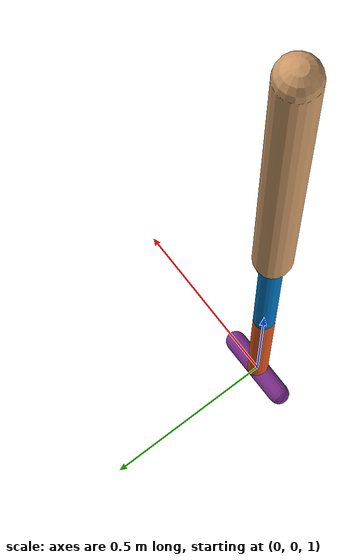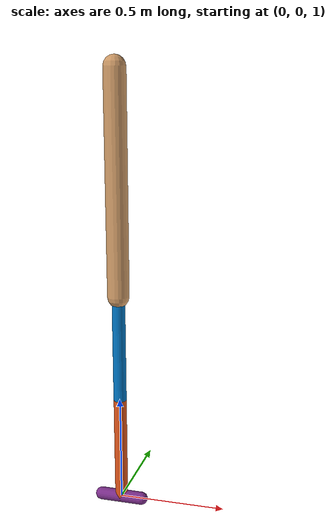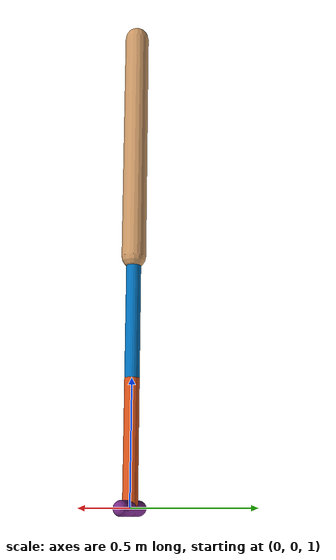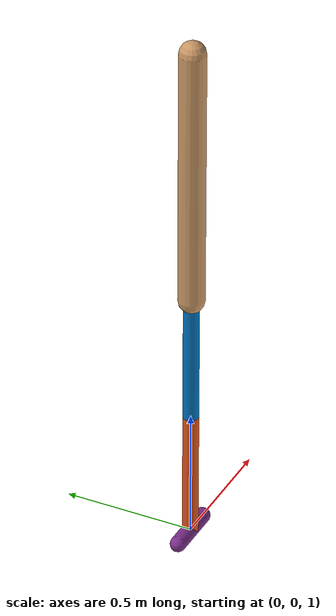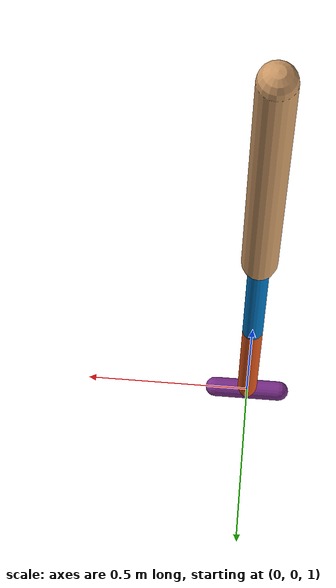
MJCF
<mujoco model="sustech_biped2d">
    <compiler angle="degree" coordinate="local" inertiafromgeom="auto"/>
    <default>
        <joint armature="0" damping="0.0" limited="true" solimplimit="0 .8 .03" solreflimit=".02 1" stiffness="0"/>
        <geom conaffinity="0" condim="3" contype="1" friction=".9 .1 .1" rgba="0.8 0.6 .4 1" solimp="0.0 0.8 0.01"
              solref="0.02 1"/>
    </default>
    <size nstack="300000" nuser_geom="1"/>
    <option gravity="0 0 -9.81" timestep="0.002"/>
    <worldbody>
        <body name="torso" pos="0 0 2.0">
            <inertial pos="0 0 0.2" mass="0" diaginertia="0.1675 0.1675 0.015"/>
            <geom fromto="0 0 0 0 0 1.0" name="torso" size="0.05" type="capsule"/>
            <body name="lthigh" pos="0 0 0">
                <joint axis="0 -1 0" damping="0.0" name="lthigh" pos="0 0 0" range="-45 135" stiffness="0"
                       type="hinge"/>
                <inertial pos="0 0 -0.25" mass="10"/>
                <geom axisangle="0 -1 0 0" name="lthigh" pos="0 0 -0.25" rgba="0 0.4470 0.7410 1"
                      size="0.03 0.25" type="capsule"/>
                <body name="lshin" pos="0 0 -0.5">
                    <joint axis="0 -1 0" damping="0.0" name="lshin" pos="0 0 0" range="-135 0" stiffness="0"
                           type="hinge"/>
                    <inertial pos="0 0 -0.25" mass="10"/>
                    <geom axisangle="0 -1 0 0" name="lshin" pos="0 0 -0.25" rgba="0.8500 0.3250 0.0980 1"
                          size="0.03 0.25" type="capsule"/>
                    <body name="lfoot" pos="0 0 -0.5">
                        <joint axis="0 -1 0" damping="0.0" name="lfoot" pos="0 0 0" range="-50 50" stiffness="0"
                               type="hinge"/>
                        <inertial pos="0 0 0" axisangle="0 -1 0 90" mass="5"/>
                        <geom axisangle="0 -1 0 90" name="lfoot" pos="0 0 0" rgba="0.4940  0.1840 0.5560 1"
                              size="0.03 0.1" type="capsule"/>
                    </body>
                </body>
            </body>
            <body name="rthigh" pos="0 0 0">
                <joint axis="0 -1 0" damping="0.0" name="rthigh" pos="0 0 0" range="-45 135" stiffness="0"
                       type="hinge"/>
                <inertial pos="0 0 -0.25" mass="10"/>
                <geom axisangle="0 -1 0 0" name="rthigh" pos="0 0 -0.25" rgba="0.8500 0.3250 0.0980 1"
                      size="0.03 0.25" type="capsule"/>
                <body name="rshin" pos="0 0 -0.5">
                    <joint axis="0 -1 0" damping="0.0" name="rshin" pos="0 0 0" range="-135 0" stiffness="0"
                           type="hinge"/>
                    <inertial pos="0 0 -0.25" mass="10"/>
                    <geom axisangle="0 -1 0 0" name="rshin" pos="0 0 -0.25" rgba="0.4940 0.1840 0.5560 1"
                          size="0.03 0.25" type="capsule"/>
                    <body name="rfoot" pos="0 0 -0.5">
                        <joint axis="0 -1 0" damping="0.0" name="rfoot" pos="0 0 0" range="-50 50" stiffness="0"
                               type="hinge"/>
                        <inertial pos="0 0 0" axisangle="0 -1 0 90" mass="5"/>
                        <geom axisangle="0 -1 0 90" name="rfoot" pos="0 0 0" rgba="0 0.4470 0.7410 1"
                              size="0.03 0.10" type="capsule"/>
                    </body>
                </body>
            </body>
        </body>
    </worldbody>
    <actuator>
        <motor ctrllimited="true" ctrlrange="-100.0 100.0" gear="1" joint="lthigh" name="lthigh"/>
        <motor ctrllimited="true" ctrlrange="-100.0 100.0" gear="1" joint="lshin" name="lshin"/>
        <motor ctrllimited="true" ctrlrange="-100.0 100.0" gear="1" joint="lfoot" name="lfoot"/>
        <motor ctrllimited="true" ctrlrange="-100.0 100.0" gear="1" joint="rthigh" name="rthigh"/>
        <motor ctrllimited="true" ctrlrange="-100.0 100.0" gear="1" joint="rshin" name="rshin"/>
        <motor ctrllimited="true" ctrlrange="-100.0 100.0" gear="1" joint="rfoot" name="rfoot"/>
    </actuator>
</mujoco>
